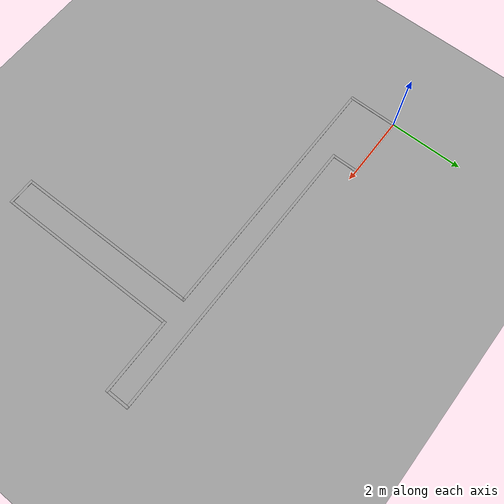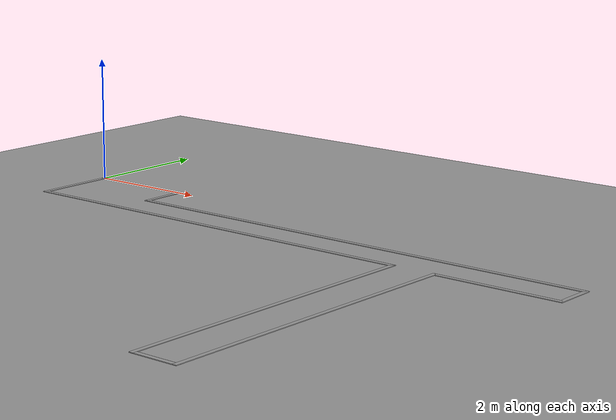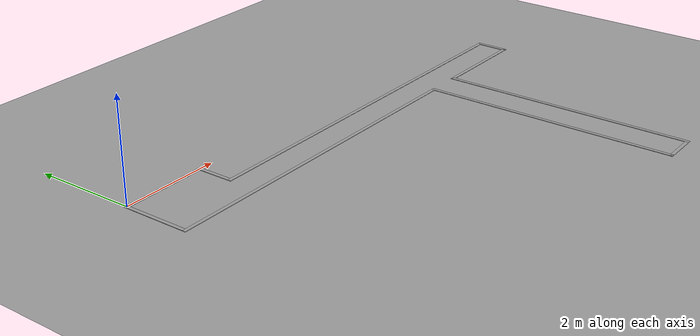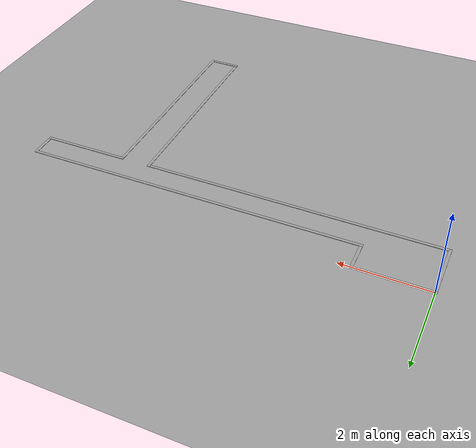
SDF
<sdf version="1.4">
 <world name="default">
  <light name="sun" type="directional">
   <pose>0 0 10 0 -0 0</pose>
   <diffuse>0.8 0.8 0.8 1</diffuse>
   <specular>0.2 0.2 0.2 1</specular>
   <attenuation>
    <range>1000</range>
    <constant>0.9</constant>
    <linear>0.01</linear>
    <quadratic>0.001</quadratic>
   </attenuation>
   <direction>0.5 0.1 -0.9</direction>
  </light>
  <scene><ambient>0.4 0.4 0.4 1</ambient><background>0.7 0.7 0.7 1</background><shadows>1</shadows></scene>
  <physics type="ode">
   <max_step_size>0.01</max_step_size>
   <real_time_factor>1</real_time_factor>
   <real_time_update_rate>100</real_time_update_rate>
   <gravity>0 0 -9.8</gravity>
  </physics>
  <model name="ground_plane_0">
   <static>1</static>
   <link name="link">
    <collision name="collision">
     <geometry><plane><normal>0 0 1</normal><size>100 100</size></plane></geometry>
     <surface><friction><ode><mu>100</mu><mu2>50</mu2></ode></friction></surface>
    </collision>
    <visual name="visual">
     <cast_shadows>0</cast_shadows>
     <geometry><plane><normal>0 0 1</normal><size>100 100</size></plane></geometry>
     <material>
      <script><uri>file://media/materials/scripts/gazebo.material</uri><name>Gazebo/Grey</name></script>
     </material>
    </visual>
    <velocity_decay><linear>0</linear><angular>0</angular></velocity_decay>
   </link>
   <pose>0.497681 0 0 0 -0 0</pose>
  </model>
  <model name="BuildingDefaultName">
   <link name="Wall_51">
    <collision name="Wall_51_Collision">
     <geometry><box><size>1.77 0.07 0.01</size></box></geometry>
     <pose>0 0 0.005 0 -0 0</pose>
    </collision>
    <visual name="Wall_51_Visual">
     <pose>0 0 0.005 0 -0 0</pose>
     <geometry><box><size>1.77 0.07 0.01</size></box></geometry>
     <material>
      <script><uri>file://media/materials/scripts/gazebo.material</uri><name>Gazebo/Grey</name></script>
     </material>
    </visual>
    <velocity_decay><linear>0</linear><angular>0</angular></velocity_decay>
    <pose>0.85 0 0 0 -0 0</pose>
   </link>
   <link name="Wall_52">
    <collision name="Wall_52_Collision">
     <geometry><box><size>0.77 0.07 0.01</size></box></geometry>
     <pose>0 0 0.005 0 -0 0</pose>
    </collision>
    <visual name="Wall_52_Visual">
     <pose>0 0 0.005 0 -0 0</pose>
     <geometry><box><size>0.77 0.07 0.01</size></box></geometry>
     <material>
      <script><uri>file://media/materials/scripts/gazebo.material</uri><name>Gazebo/Grey</name></script>
     </material>
    </visual>
    <velocity_decay><linear>0</linear><angular>0</angular></velocity_decay>
    <pose>1.7 -0.35 0 0 0 -1.5708</pose>
   </link>
   <link name="Wall_53">
    <collision name="Wall_53_Collision">
     <geometry><box><size>8.07 0.07 0.01</size></box></geometry>
     <pose>0 0 0.005 0 -0 0</pose>
    </collision>
    <visual name="Wall_53_Visual">
     <pose>0 0 0.005 0 -0 0</pose>
     <geometry><box><size>8.07 0.07 0.01</size></box></geometry>
     <material>
      <script><uri>file://media/materials/scripts/gazebo.material</uri><name>Gazebo/Grey</name></script>
     </material>
    </visual>
    <velocity_decay><linear>0</linear><angular>0</angular></velocity_decay>
    <pose>5.7 -0.7 0 0 -0 0</pose>
   </link>
   <link name="Wall_54">
    <collision name="Wall_54_Collision">
     <geometry><box><size>0.67 0.07 0.01</size></box></geometry>
     <pose>0 0 0.005 0 -0 0</pose>
    </collision>
    <visual name="Wall_54_Visual">
     <pose>0 0 0.005 0 -0 0</pose>
     <geometry><box><size>0.67 0.07 0.01</size></box></geometry>
     <material>
      <script><uri>file://media/materials/scripts/gazebo.material</uri><name>Gazebo/Grey</name></script>
     </material>
    </visual>
    <velocity_decay><linear>0</linear><angular>0</angular></velocity_decay>
    <pose>9.7 -1 0 0 0 -1.5708</pose>
   </link>
   <link name="Wall_55">
    <collision name="Wall_55_Collision">
     <geometry><box><size>2.07 0.07 0.01</size></box></geometry>
     <pose>0 0 0.005 0 -0 0</pose>
    </collision>
    <visual name="Wall_55_Visual">
     <pose>0 0 0.005 0 -0 0</pose>
     <geometry><box><size>2.07 0.07 0.01</size></box></geometry>
     <material>
      <script><uri>file://media/materials/scripts/gazebo.material</uri><name>Gazebo/Grey</name></script>
     </material>
    </visual>
    <velocity_decay><linear>0</linear><angular>0</angular></velocity_decay>
    <pose>8.7 -1.3 0 0 -0 3.14159</pose>
   </link>
   <link name="Wall_56">
    <collision name="Wall_56_Collision">
     <geometry><box><size>5.07 0.07 0.01</size></box></geometry>
     <pose>0 0 0.005 0 -0 0</pose>
    </collision>
    <visual name="Wall_56_Visual">
     <pose>0 0 0.005 0 -0 0</pose>
     <geometry><box><size>5.07 0.07 0.01</size></box></geometry>
     <material>
      <script><uri>file://media/materials/scripts/gazebo.material</uri><name>Gazebo/Grey</name></script>
     </material>
    </visual>
    <velocity_decay><linear>0</linear><angular>0</angular></velocity_decay>
    <pose>7.7 -3.8 0 0 0 -1.5708</pose>
   </link>
   <link name="Wall_57">
    <collision name="Wall_57_Collision">
     <geometry><box><size>0.77 0.07 0.01</size></box></geometry>
     <pose>0 0 0.005 0 -0 0</pose>
    </collision>
    <visual name="Wall_57_Visual">
     <pose>0 0 0.005 0 -0 0</pose>
     <geometry><box><size>0.77 0.07 0.01</size></box></geometry>
     <material>
      <script><uri>file://media/materials/scripts/gazebo.material</uri><name>Gazebo/Grey</name></script>
     </material>
    </visual>
    <velocity_decay><linear>0</linear><angular>0</angular></velocity_decay>
    <pose>7.35 -6.3 0 0 -0 3.14159</pose>
   </link>
   <link name="Wall_58">
    <collision name="Wall_58_Collision">
     <geometry><box><size>5.07 0.07 0.01</size></box></geometry>
     <pose>0 0 0.005 0 -0 0</pose>
    </collision>
    <visual name="Wall_58_Visual">
     <pose>0 0 0.005 0 -0 0</pose>
     <geometry><box><size>5.07 0.07 0.01</size></box></geometry>
     <material>
      <script><uri>file://media/materials/scripts/gazebo.material</uri><name>Gazebo/Grey</name></script>
     </material>
    </visual>
    <velocity_decay><linear>0</linear><angular>0</angular></velocity_decay>
    <pose>7 -3.8 0 0 -0 1.5708</pose>
   </link>
   <link name="Wall_59">
    <collision name="Wall_59_Collision">
     <geometry><box><size>7.07 0.07 0.01</size></box></geometry>
     <pose>0 0 0.005 0 -0 0</pose>
    </collision>
    <visual name="Wall_59_Visual">
     <pose>0 0 0.005 0 -0 0</pose>
     <geometry><box><size>7.07 0.07 0.01</size></box></geometry>
     <material>
      <script><uri>file://media/materials/scripts/gazebo.material</uri><name>Gazebo/Grey</name></script>
     </material>
    </visual>
    <velocity_decay><linear>0</linear><angular>0</angular></velocity_decay>
    <pose>3.5 -1.3 0 0 -0 3.14159</pose>
   </link>
   <link name="Wall_60">
    <collision name="Wall_60_Collision">
     <geometry><box><size>1.37 0.07 0.01</size></box></geometry>
     <pose>0 0 0.005 0 -0 0</pose>
    </collision>
    <visual name="Wall_60_Visual">
     <pose>0 0 0.005 0 -0 0</pose>
     <geometry><box><size>1.37 0.07 0.01</size></box></geometry>
     <material>
      <script><uri>file://media/materials/scripts/gazebo.material</uri><name>Gazebo/Grey</name></script>
     </material>
    </visual>
    <velocity_decay><linear>0</linear><angular>0</angular></velocity_decay>
    <pose>0 -0.65 0 0 -0 1.5708</pose>
   </link>
   <static>1</static>
  </model>
  <spherical_coordinates>
   <surface_model>EARTH_WGS84</surface_model>
   <latitude_deg>0</latitude_deg>
   <longitude_deg>0</longitude_deg>
   <elevation>0</elevation>
   <heading_deg>0</heading_deg>
  </spherical_coordinates>
 </world>
</sdf>
